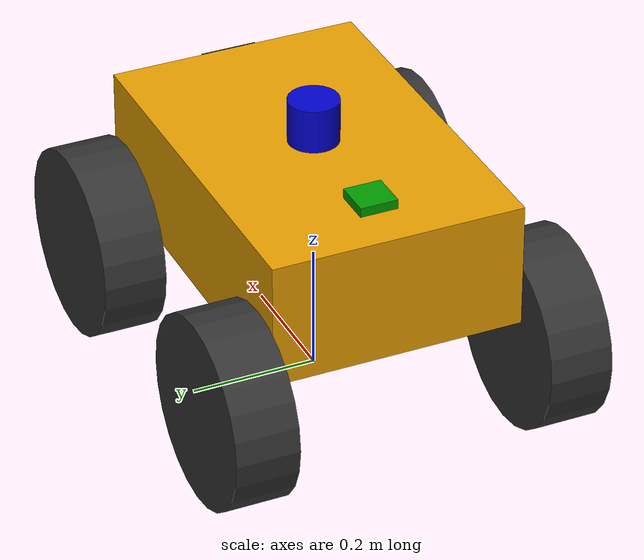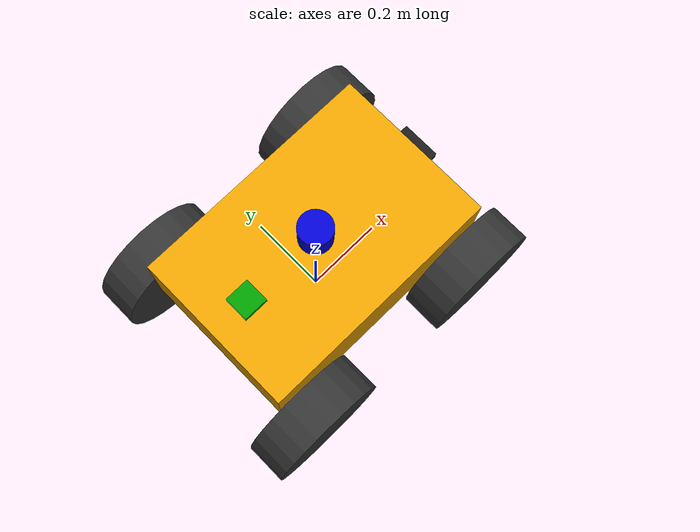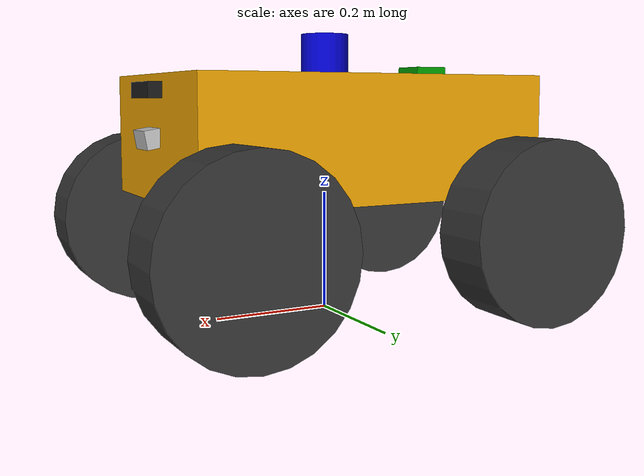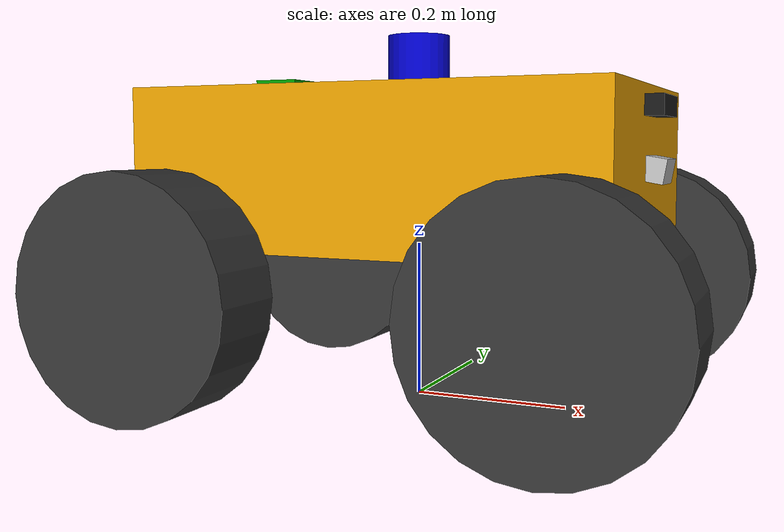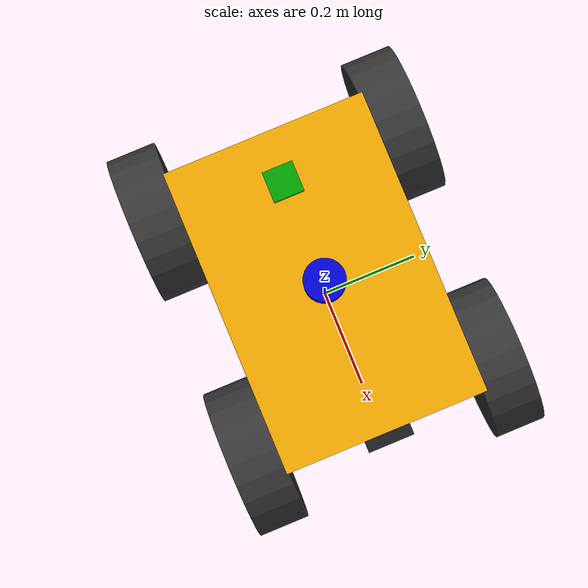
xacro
<?xml version="1.0"?>
<robot name="TARS" xmlns:xacro="http://www.ros.org/wiki/xacro">

  <!-- ================= BASE LINK ================= -->
  <link name="base_link">
    <inertial>
      <mass value="2.0"/>
      <origin xyz="0 0 0.30"/>
      <inertia ixx="0.0333" ixy="0" ixz="0"
               iyy="0.0667" iyz="0"
               izz="0.0867"/>
    </inertial>
    <visual>
      <origin xyz="0 0 0.30"/>
      <geometry>
        <box size="0.6 0.4 0.2"/>
      </geometry>
    </visual>
    <collision>
      <origin xyz="0 0 0.30"/>
      <geometry>
        <box size="0.6 0.4 0.2"/>
      </geometry>
    </collision>
  </link>

  <!-- ================= WHEEL LINKS ================= -->

  <!-- FRONT LEFT -->
  <link name="front_left_wheel">
    <inertial>
      <mass value="0.5"/>
      <origin xyz="0 0 0"/>
      <inertia ixx="0.00292" ixy="0" ixz="0"
               iyy="0.00292" iyz="0"
               izz="0.00563"/>
    </inertial>
    <visual>
      <origin rpy="1.57 0 0"/>
      <geometry>
        <cylinder radius="0.15" length="0.1"/>
      </geometry>
      <material name="darkgrey">
        <color rgba="0.2 0.2 0.2 1"/>
      </material>
    </visual>
    <collision>
      <origin rpy="1.57 0 0"/>
      <geometry>
        <cylinder radius="0.15" length="0.1"/>
      </geometry>
    </collision>
  </link>

  <!-- FRONT RIGHT -->
  <link name="front_right_wheel">
    <inertial>
      <mass value="0.5"/>
      <origin xyz="0 0 0"/>
      <inertia ixx="0.00292" ixy="0" ixz="0"
               iyy="0.00292" iyz="0"
               izz="0.00563"/>
    </inertial>
    <visual>
      <origin rpy="1.57 0 0"/>
      <geometry>
        <cylinder radius="0.15" length="0.1"/>
      </geometry>
      <material name="darkgrey">
        <color rgba="0.2 0.2 0.2 1"/>
      </material>
    </visual>
    <collision>
      <origin rpy="1.57 0 0"/>
      <geometry>
        <cylinder radius="0.15" length="0.1"/>
      </geometry>
    </collision>
  </link>

  <!-- REAR LEFT -->
  <link name="rear_left_wheel">
    <inertial>
      <mass value="0.5"/>
      <origin xyz="0 0 0"/>
      <inertia ixx="0.00292" ixy="0" ixz="0"
               iyy="0.00292" iyz="0"
               izz="0.00563"/>
    </inertial>
    <visual>
      <origin rpy="1.57 0 0"/>
      <geometry>
        <cylinder radius="0.15" length="0.1"/>
      </geometry>
      <material name="darkgrey">
        <color rgba="0.2 0.2 0.2 1"/>
      </material>
    </visual>
    <collision>
      <origin rpy="1.57 0 0"/>
      <geometry>
        <cylinder radius="0.15" length="0.1"/>
      </geometry>
    </collision>
  </link>

  <!-- REAR RIGHT -->
  <link name="rear_right_wheel">
    <inertial>
      <mass value="0.5"/>
      <origin xyz="0 0 0"/>
      <inertia ixx="0.00292" ixy="0" ixz="0"
               iyy="0.00292" iyz="0"
               izz="0.00563"/>
    </inertial>
    <visual>
      <origin rpy="1.57 0 0"/>
      <geometry>
        <cylinder radius="0.15" length="0.1"/>
      </geometry>
      <material name="darkgrey">
        <color rgba="0.2 0.2 0.2 1"/>
      </material>
    </visual>
    <collision>
      <origin rpy="1.57 0 0"/>
      <geometry>
        <cylinder radius="0.15" length="0.1"/>
      </geometry>
    </collision>
  </link>

  <!-- ================================================================
       SENSOR LINKS
  ================================================================ -->

  <link name="lidar_link">
    <inertial>
      <mass value="0.35"/>
      <origin xyz="0 0 0"/>
      <inertia ixx="0.001" ixy="0" ixz="0"
               iyy="0.001" iyz="0"
               izz="0.001"/>
    </inertial>
    <visual>
      <origin xyz="0 0 0"/>
      <geometry>
        <cylinder radius="0.04" length="0.07"/>
      </geometry>
      <material name="blue">
        <color rgba="0 0 0.8 1"/>
      </material>
    </visual>
    <collision>
      <origin xyz="0 0 0"/>
      <geometry>
        <cylinder radius="0.04" length="0.07"/>
      </geometry>
    </collision>
  </link>

  <link name="imu_link">
    <inertial>
      <mass value="0.05"/>
      <origin xyz="0 0 0"/>
      <inertia ixx="0.0001" ixy="0" ixz="0"
               iyy="0.0001" iyz="0"
               izz="0.0001"/>
    </inertial>
    <visual>
      <origin xyz="0 0 0"/>
      <geometry>
        <box size="0.04 0.04 0.01"/>
      </geometry>
      <material name="green">
        <color rgba="0 0.6 0 1"/>
      </material>
    </visual>
    <collision>
      <origin xyz="0 0 0"/>
      <geometry>
        <box size="0.04 0.04 0.01"/>
      </geometry>
    </collision>
  </link>

  <!-- ── GPS ────────────────────────────────────────────────────────
       Placed at rear-top of chassis for maximum open sky exposure
  ──────────────────────────────────────────────────────────────── -->

  <link name="gps_link">
    <inertial>
      <mass value="0.08"/>
      <origin xyz="0 0 0"/>
      <inertia ixx="0.0001" ixy="0" ixz="0"
               iyy="0.0001" iyz="0"
               izz="0.0001"/>
    </inertial>
    <visual>
      <origin xyz="0 0 0"/>
      <geometry>
        <box size="0.06 0.06 0.015"/>
      </geometry>
      <material name="green">
        <color rgba="0 0.6 0 1"/>
      </material>
    </visual>
    <collision>
      <origin xyz="0 0 0"/>
      <geometry>
        <box size="0.06 0.06 0.015"/>
      </geometry>
    </collision>
  </link>

  <link name="realsense_link">
    <inertial>
      <mass value="0.072"/>
      <origin xyz="0 0 0"/>
      <inertia ixx="0.0001" ixy="0" ixz="0"
               iyy="0.0001" iyz="0"
               izz="0.0001"/>
    </inertial>
    <visual>
      <origin xyz="0 0 0"/>
      <geometry>
        <!-- RealSense D435 approximate body dimensions: 90mm W × 25mm H × 25mm D -->
        <box size="0.025 0.090 0.025"/>
      </geometry>
      <material name="realsense_black">
        <color rgba="0.1 0.1 0.1 1"/>
      </material>
    </visual>
    <collision>
      <origin xyz="0 0 0"/>
      <geometry>
        <box size="0.025 0.090 0.025"/>
      </geometry>
    </collision>
  </link>

  <!-- ── Front Mono Camera ─────────────────────────────────────────
       Front bumper, mid-height, 10° nose-down
  ──────────────────────────────────────────────────────────────── -->

  <link name="front_camera_link">
    <inertial>
      <mass value="0.05"/>
      <origin xyz="0 0 0"/>
      <inertia ixx="0.0001" ixy="0" ixz="0"
               iyy="0.0001" iyz="0"
               izz="0.0001"/>
    </inertial>
    <visual>
      <origin xyz="0 0 0"/>
      <geometry>
        <box size="0.025 0.06 0.03"/>
      </geometry>
      <material name="silver">
        <color rgba="0.75 0.75 0.75 1"/>
      </material>
    </visual>
    <collision>
      <origin xyz="0 0 0"/>
      <geometry>
        <box size="0.025 0.06 0.03"/>
      </geometry>
    </collision>
  </link>

  <!-- ================================================================
       WHEEL JOINTS
  ================================================================ -->

  <joint name="front_left_wheel_joint" type="continuous">
    <parent link="base_link"/>
    <child  link="front_left_wheel"/>
    <origin xyz="0.25 0.251 0.15"/>
    <axis xyz="0 1 0"/>
    <dynamics damping="1.0" friction="0.0"/>
    <limit effort="50" velocity="50"/>
  </joint>

  <joint name="front_right_wheel_joint" type="continuous">
    <parent link="base_link"/>
    <child  link="front_right_wheel"/>
    <origin xyz="0.25 -0.251 0.15"/>
    <axis xyz="0 1 0"/>
    <dynamics damping="1.0" friction="0.0"/>
    <limit effort="50" velocity="50"/>
  </joint>

  <joint name="rear_left_wheel_joint" type="continuous">
    <parent link="base_link"/>
    <child  link="rear_left_wheel"/>
    <origin xyz="-0.25 0.251 0.15"/>
    <axis xyz="0 1 0"/>
    <dynamics damping="1.0" friction="0.0"/>
    <limit effort="50" velocity="50"/>
  </joint>

  <joint name="rear_right_wheel_joint" type="continuous">
    <parent link="base_link"/>
    <child  link="rear_right_wheel"/>
    <origin xyz="-0.25 -0.251 0.15"/>
    <axis xyz="0 1 0"/>
    <dynamics damping="1.0" friction="0.0"/>
    <limit effort="50" velocity="50"/>
  </joint>

  <!-- ================================================================
       SENSOR JOINTS  (all fixed — sensors don't move)
  ================================================================ -->

  <!-- LiDAR: top-centre, sits 0.035 above chassis top (half cylinder height) -->

  <joint name="lidar_joint" type="fixed">
    <parent link="base_link"/>
    <child  link="lidar_link"/>
    <origin xyz="0 0 0.435" rpy="0 0 0"/>
  </joint>

  <!-- IMU: chassis centre height — closest to CoM, minimises vibration -->

  <joint name="imu_joint" type="fixed">
    <parent link="base_link"/>
    <child  link="imu_link"/>
    <origin xyz="0 0 0.30" rpy="0 0 0"/>
  </joint>

  <!-- GPS: rear-top of chassis — maximum sky exposure away from electronics -->

  <joint name="gps_joint" type="fixed">
    <parent link="base_link"/>
    <child  link="gps_link"/>
    <origin xyz="-0.20 0 0.41" rpy="0 0 0"/>
  </joint>

  <!-- RealSense: front face, between front camera (z=0.30) and LiDAR (z=0.435)
       z=0.375 keeps it clear of the LiDAR scan plane.
       No pitch offset — faces straight forward. -->

  <joint name="realsense_joint" type="fixed">
  <parent link="base_link"/>
  <child  link="realsense_link"/>
  <origin xyz="0.31 0 0.375" rpy="0 0 0"/>
</joint>

<!-- Optical frame: rotates camera convention (Z-forward) to ROS convention (X-forward) -->
<link name="realsense_optical_link"/>

<joint name="realsense_optical_joint" type="fixed">
	 <parent link="realsense_link"/>
	 <child  link="realsense_optical_link"/>
	 <origin xyz="0 0 0" rpy="-1.5708 0 -1.5708"/>
</joint>

  <!-- Front camera: front face, mid chassis height, 10° nose-down -->

  <joint name="front_camera_joint" type="fixed">
    <parent link="base_link"/>
    <child  link="front_camera_link"/>
    <origin xyz="0.31 0 0.30" rpy="0 0.1745 0"/>
  </joint>

  <!-- ================================================================
       GAZEBO — WHEEL COLOURS
  ================================================================ -->

  <gazebo reference="front_left_wheel">
    <material>Gazebo/Grey</material>
  </gazebo>
  <gazebo reference="front_right_wheel">
    <material>Gazebo/Grey</material>
  </gazebo>
  <gazebo reference="rear_left_wheel">
    <material>Gazebo/Grey</material>
  </gazebo>
  <gazebo reference="rear_right_wheel">
    <material>Gazebo/Grey</material>
  </gazebo>

  <!-- ================================================================
       GAZEBO — WHEEL FRICTION / CONTACT
  ================================================================ -->

  <gazebo reference="front_left_wheel">
    <collision>
      <surface>
        <friction>
          <ode><mu1>0.6</mu1><mu2>0.6</mu2>
          <slip1>0.02</slip1>
	  <slip2>0.02</slip2></ode>
        </friction>
        <contact>
          <ode>
            <kp>20000.0</kp><kd>100.0</kd>
            <min_depth>0.001</min_depth><max_vel>0.1</max_vel>
          </ode>
        </contact>
      </surface>
    </collision>
  </gazebo>

  <gazebo reference="front_right_wheel">
    <collision>
      <surface>
        <friction>
          <ode><mu1>0.6</mu1><mu2>0.6</mu2> <slip1>0.02</slip1>
	  <slip2>0.02</slip2></ode>
        </friction>
        <contact>
          <ode>
            <kp>20000.0</kp><kd>100.0</kd>
            <min_depth>0.001</min_depth><max_vel>0.1</max_vel>
          </ode>
        </contact>
      </surface>
    </collision>
  </gazebo>

  <gazebo reference="rear_left_wheel">
    <collision>
      <surface>
        <friction>
          <ode><mu1>0.6</mu1><mu2>0.6</mu2> <slip1>0.02</slip1>
      	  <slip2>0.02</slip2></ode>
        </friction>
        <contact>
          <ode>
            <kp>20000.0</kp><kd>100.0</kd>
            <min_depth>0.001</min_depth><max_vel>0.1</max_vel>
          </ode>
        </contact>
      </surface>
    </collision>
  </gazebo>

  <gazebo reference="rear_right_wheel">
    <collision>
      <surface>
        <friction>
          <ode><mu1>0.6</mu1><mu2>0.6</mu2> <slip1>0.02</slip1>
	  <slip2>0.02</slip2></ode>
        </friction>
        <contact>
          <ode>
            <kp>20000.0</kp><kd>100.0</kd>
            <min_depth>0.001</min_depth><max_vel>0.1</max_vel>
          </ode>
        </contact>
      </surface>
    </collision>
  </gazebo>

  <gazebo reference="lidar_link">
    <sensor type="ray" name="lidar_sensor">
      <pose>0 0 0 0 0 0</pose>
      <visualize>false</visualize>
      <always_on>true</always_on>
      <update_rate>15</update_rate>
      <ray>
        <scan>
          <horizontal>
            <samples>720</samples>
            <resolution>1</resolution>
            <min_angle>-3.14159</min_angle>
            <max_angle>3.14159</max_angle>
          </horizontal>
        </scan>
        <range>
          <min>0.10</min>
          <max>30.0</max>
          <resolution>0.01</resolution>
        </range>
        <noise>
          <type>gaussian</type>
          <mean>0.0</mean>
          <stddev>0.01</stddev>
        </noise>
      </ray>
      <plugin name="lidar_plugin" filename="libgazebo_ros_ray_sensor.so">
        <topicName>/scan</topicName>
        <frameName>lidar_link</frameName>
      </plugin>
    </sensor>
    <material>Gazebo/Blue</material>
  </gazebo>

  <!-- ================================================================
       GAZEBO — IMU PLUGIN
       200 Hz → /imu/data
  ================================================================ -->

  <gazebo reference="imu_link">
    <gravity>true</gravity>
    <sensor name="imu_sensor" type="imu">
      <always_on>true</always_on>
      <update_rate>200</update_rate>
      <visualize>true</visualize>
      <imu>
        <angular_velocity>
          <x><noise type="gaussian"><mean>0.0</mean><stddev>0.009</stddev></noise></x>
          <y><noise type="gaussian"><mean>0.0</mean><stddev>0.009</stddev></noise></y>
          <z><noise type="gaussian"><mean>0.0</mean><stddev>0.009</stddev></noise></z>
        </angular_velocity>
        <linear_acceleration>
          <x><noise type="gaussian"><mean>0.0</mean><stddev>0.021</stddev></noise></x>
          <y><noise type="gaussian"><mean>0.0</mean><stddev>0.021</stddev></noise></y>
          <z><noise type="gaussian"><mean>0.0</mean><stddev>0.021</stddev></noise></z>
        </linear_acceleration>
      </imu>
      <plugin filename="libgazebo_ros_imu_sensor.so" name="imu_plugin">
        <topicName>/imu/data</topicName>
        <bodyName>imu_link</bodyName>
        <updateRateHZ>200.0</updateRateHZ>
        <frameName>imu_link</frameName>
        <initialOrientationAsReference>false</initialOrientationAsReference>
      </plugin>
    </sensor>
    <material>Gazebo/Green</material>
  </gazebo>

  <!-- ================================================================
       GAZEBO — GPS PLUGIN
       10 Hz → /gps/fix
  ================================================================ -->
  <gazebo reference="gps_link">
    <sensor type="gps" name="gps_sensor">
      <always_on>true</always_on>
      <update_rate>10</update_rate>

      <gps>
        <position_sensing>
          <horizontal>
            <noise type="gaussian">
              <mean>0.0</mean>
              <stddev>0.5</stddev>
            </noise>
          </horizontal>
          <vertical>
            <noise type="gaussian">
              <mean>0.0</mean>
              <stddev>1.0</stddev>
            </noise>
          </vertical>
        </position_sensing>
      </gps>

      <plugin name="gps_plugin" filename="libgazebo_ros_gps_sensor.so">
        <robotNamespace>/</robotNamespace>
        <topicName>/gps_plugin/out</topicName>
        <velocityTopicName>/gps_plugin/vel</velocityTopicName>
        <frameName>base_link</frameName>
        <referenceLatitude>12.9716</referenceLatitude>
        <referenceLongitude>77.5946</referenceLongitude>
        <referenceAltitude>920.0</referenceAltitude>
      </plugin>
    </sensor>
  </gazebo>

  <!-- ================================================================
     GAZEBO — INTEL REALSENSE (Humble-compatible, camera.so only)
================================================================ -->

<!-- COLOUR STREAM -->
<gazebo reference="realsense_link">
  <sensor type="camera" name="realsense_color">
    <always_on>true</always_on>
    <update_rate>30</update_rate>
    <visualize>false</visualize>
    <camera name="color">
      <horizontal_fov>1.5184</horizontal_fov>
      <image>
        <width>640</width>
        <height>480</height>
        <format>R8G8B8</format>
      </image>
      <clip><near>0.1</near><far>10.0</far></clip>
      <noise>
        <type>gaussian</type><mean>0.0</mean><stddev>0.005</stddev>
      </noise>
    </camera>
    <plugin name="realsense_color_plugin" filename="libgazebo_ros_camera.so">
      <ros>
        <remapping>~/image_raw:=/camera/color/image_raw</remapping>
        <remapping>~/camera_info:=/camera/color/camera_info</remapping>
      </ros>
      <camera_name>color</camera_name>
      <frame_name>realsense_optical_link</frame_name>
    </plugin>
  </sensor>
</gazebo>

<!-- DEPTH STREAM (uses camera sensor with depth format) -->
<gazebo reference="realsense_link">
  <sensor type="depth" name="realsense_depth">
    <always_on>true</always_on>
    <update_rate>30</update_rate>
    <visualize>false</visualize>
    <camera name="depth">
      <horizontal_fov>1.5184</horizontal_fov>
      <image>
        <width>640</width>
        <height>480</height>
        <format>R8G8B8</format>
      </image>
      <clip><near>0.1</near><far>10.0</far></clip>
    </camera>
    <plugin name="realsense_depth_plugin" filename="libgazebo_ros_camera.so">
      <ros>
        <remapping>~/image_raw:=/camera/depth/image_raw</remapping>
        <remapping>~/camera_info:=/camera/depth/camera_info</remapping>
        <remapping>~/points:=/camera/depth/points</remapping>
      </ros>
      <camera_name>depth</camera_name>
      <frame_name>realsense_optical_link</frame_name>
    </plugin>
  </sensor>
</gazebo>
  <gazebo reference="front_camera_link">
    <sensor type="camera" name="front_camera">
      <always_on>true</always_on>
      <update_rate>30</update_rate>
      <visualize>false</visualize>
      <camera name="front_camera">
        <horizontal_fov>1.3962634</horizontal_fov>
        <image>
          <width>1280</width>
          <height>720</height>
          <format>R8G8B8</format>
        </image>
        <clip><near>0.05</near><far>100</far></clip>
        <noise>
          <type>gaussian</type><mean>0.0</mean><stddev>0.005</stddev>
        </noise>
      </camera>
      <plugin name="front_cam_plugin" filename="libgazebo_ros_camera.so">
        <cameraName>front_camera</cameraName>
        <imageTopicName>image_raw</imageTopicName>
        <cameraInfoTopicName>camera_info</cameraInfoTopicName>
        <frameName>front_camera_link</frameName>
        <hackBaseline>0.0</hackBaseline>
      </plugin>
    </sensor>
    <material>Gazebo/Grey</material>
  </gazebo>

  <gazebo>
    <plugin name="diff_drive" filename="libgazebo_ros_diff_drive.so">
      <ros>
      	<namespace>/tars</namespace>
      </ros>
      <num_wheel_pairs>2</num_wheel_pairs>

	<left_joint>front_left_wheel_joint</left_joint>
	<left_joint>rear_left_wheel_joint</left_joint>

	<right_joint>front_right_wheel_joint</right_joint>
	<right_joint>rear_right_wheel_joint</right_joint>

      <wheel_separation>0.502</wheel_separation>
      <wheel_diameter>0.30</wheel_diameter>

      <max_wheel_torque>50</max_wheel_torque>
      <max_wheel_acceleration>1.0</max_wheel_acceleration>

      <command_topic>cmd_vel</command_topic>
      <odometry_topic>odom</odometry_topic>
      <odometry_frame>odom</odometry_frame>
      <robot_base_frame>base_link</robot_base_frame>

      <publish_odom>true</publish_odom>
      <publish_odom_tf>true</publish_odom_tf>
      <publish_wheel_tf>false</publish_wheel_tf>
    </plugin>
  </gazebo>

</robot>
